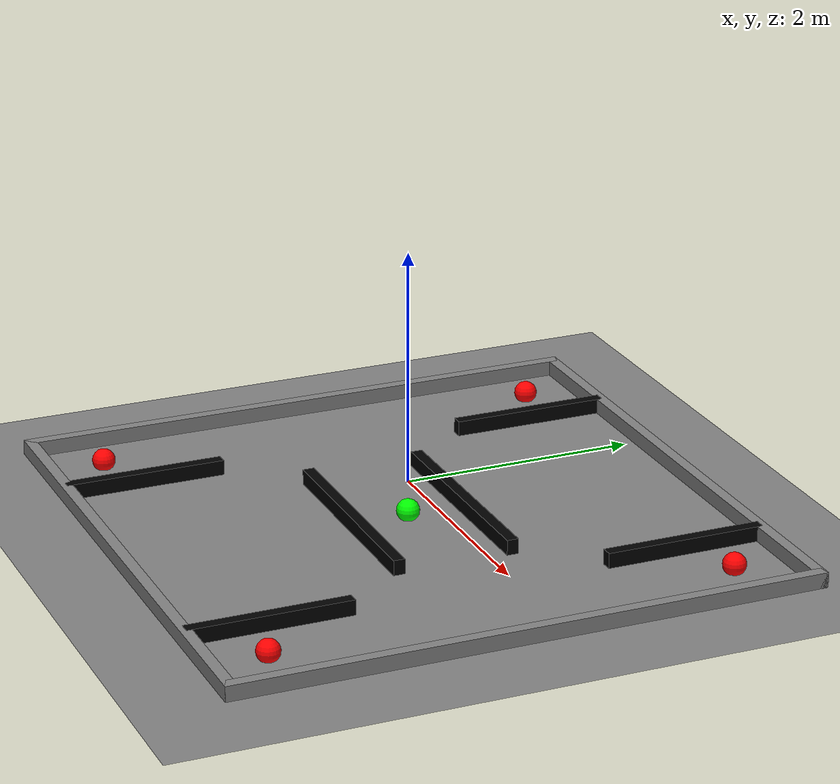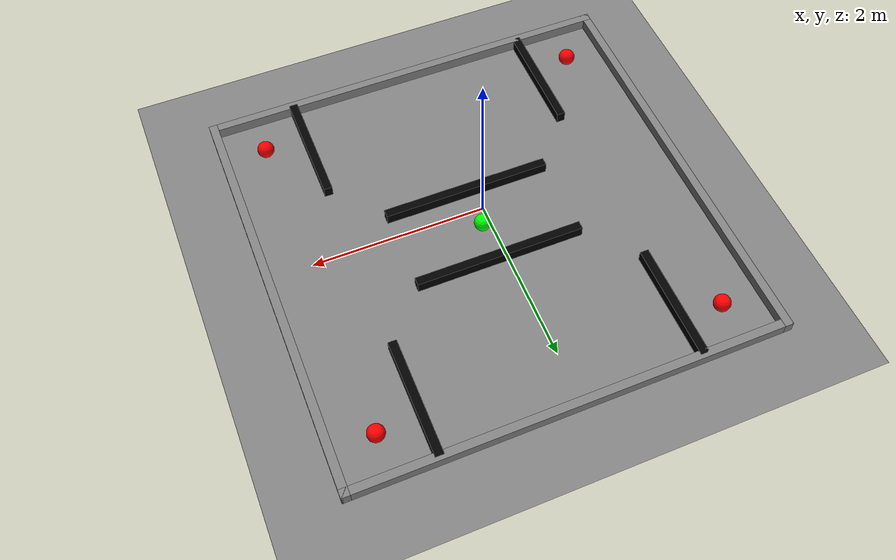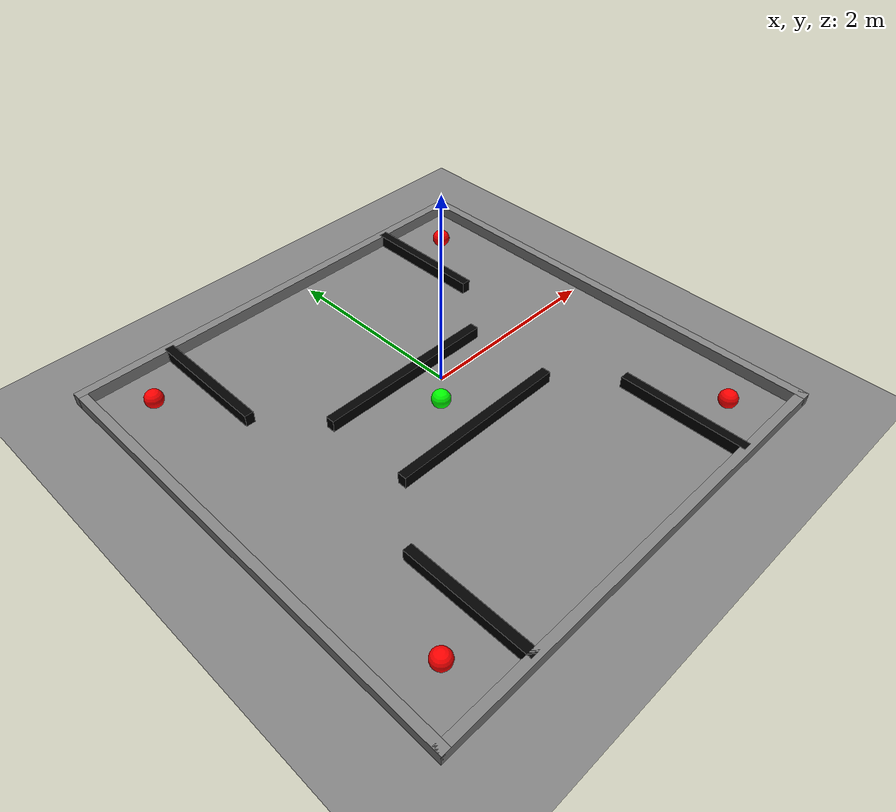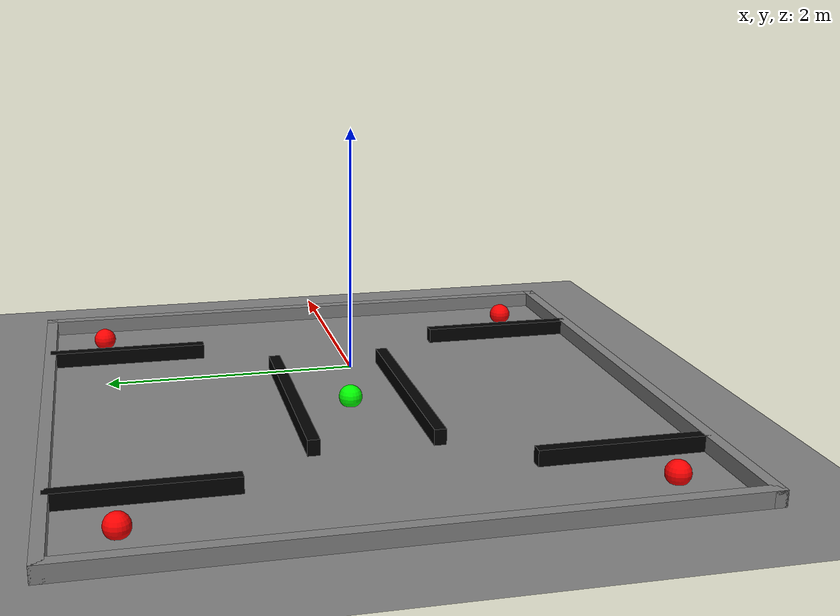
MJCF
<mujoco model="arm3d">
    <compiler angle="radian" coordinate="local" inertiafromgeom="true" meshdir="mesh" texturedir="textures" />
    <option gravity="0 0 0" integrator="Euler" iterations="20" timestep="0.01" />

    <default>
        <joint armature="0.04" damping="1" limited="true" />
        <geom conaffinity="0" condim="1" contype="0" density="10" friction=".8 .1 .1" margin="0.002" />
    </default>

    <worldbody>
        <light diffuse=".5 .5 .5" dir="0 0 -1" pos="0 0 3" />

        <geom conaffinity="1" contype="1" condim="1" name="table" pos="0 0.5 -0.325" size="10 10 0.1" type="plane" />

      <geom conaffinity="1" contype="1" condim="1" rgba="0.5 0.5 0.5 1" type="box" size="2.55 0.05 0.1" pos = "0 2.5 -0.3"/>
      <geom conaffinity="1" contype="1" condim="1" rgba="0.5 0.5 0.5 1" type="box" size="0.05 2.55 0.1" pos = "2.5 0 -0.3"/>
      <geom conaffinity="1" contype="1" condim="1" rgba="0.5 0.5 0.5 1" type="box" size="0.05 2.55 0.1" pos = "-2.5 0 -0.3"/>
      <geom conaffinity="1" contype="1" condim="1" rgba="0.5 0.5 0.5 1" type="box" size="2.55 0.05 0.1" pos = "0 -2.5 -0.3"/>

      <geom conaffinity="1" contype="1" condim="1" rgba="0 0 0 1" type="box" size="1 0.05 0.1" pos = "0 0.5 -0.3"/>
        <geom conaffinity="1" contype="1" condim="1" rgba="0 0 0 1" type="box" size="1 0.05 0.1" pos = "0 -0.5 -0.3"/>
      <geom conaffinity="1" contype="1" condim="1" rgba="0 0 0 1" type="box" size="0.05 0.7 0.1" pos = "-1.5 1.8 -0.3"/>
        <geom conaffinity="1" contype="1" condim="1" rgba="0 0 0 1" type="box" size="0.05 0.7 0.1" pos = "-1.5 -1.8 -0.3"/>

      <geom conaffinity="1" contype="1" condim="1" rgba="0 0 0 1" type="box" size="0.05 0.7 0.1" pos = "1.5 1.8 -0.3"/>
        <geom conaffinity="1" contype="1" condim="1" rgba="0 0 0 1" type="box" size="0.05 0.7 0.1" pos = "1.5 -1.8 -0.3"/>
      <geom conaffinity="1" contype="1" condim="1" rgba="0 0 0 1" type="box" size="0.05 0.7 0.1" pos = "-1.5 1.8 -0.3"/>
        <geom conaffinity="1" contype="1" condim="1" rgba="0 0 0 1" type="box" size="0.05 0.7 0.1" pos = "-1.5 -1.8 -0.3"/>

        <geom conaffinity="0" rgba="1 0 0 1" contype="0" size="0.1" pos="2 2 -0.2630" type="sphere"/>
        <geom conaffinity="0" rgba="1 0 0 1" contype="0" size="0.1" pos="2 -2 -0.2630" type="sphere"/>
        <geom conaffinity="0" rgba="1 0 0 1" contype="0" size="0.1" pos="-2 2 -0.2630" type="sphere"/>
        <geom conaffinity="0" rgba="1 0 0 1" contype="0" size="0.1" pos="-2 -2 -0.2630" type="sphere"/>

        <body name="wrist base" pos="0. 0. -0.2630">
            <joint axis="1 0 0" damping="0.5" name="wrist_slidex" pos="0 0 0" range="-10.3213 10.3" type="slide" />
            <joint axis="0 1 0" damping="0.5" name="wrist_slidey" pos="0 0 0" range="-10.3213 10.3" type="slide" />
            <geom conaffinity="1" rgba="0 1 0 1" contype="1" condim="1" size="0.1" type="sphere"/>
        </body>

    </worldbody>

    <actuator>
        <motor ctrllimited="true" ctrlrange="-0.1 0.1" joint="wrist_slidex" />
        <motor ctrllimited="true" ctrlrange="-0.1 0.1" joint="wrist_slidey" />
    </actuator>

</mujoco>
